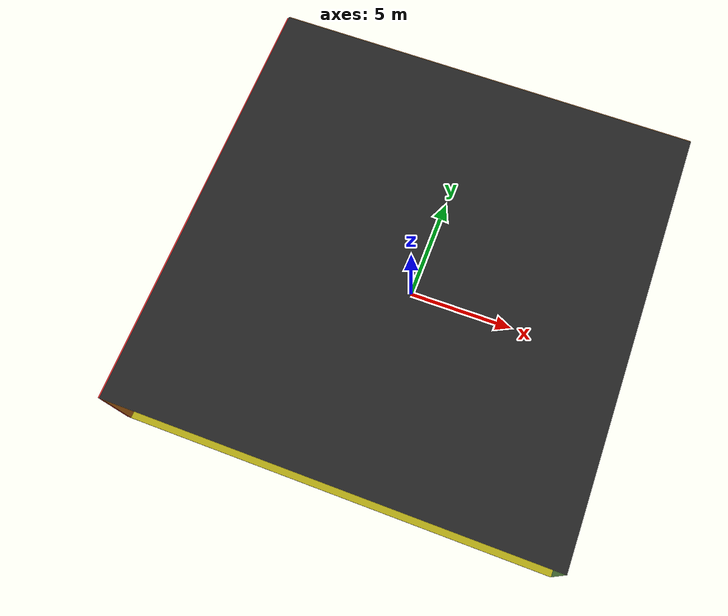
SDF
<sdf version="1.4">
 <world name="default">
  <physics type="ode">
   <max_step_size>0.001</max_step_size>
   <real_time_factor>1</real_time_factor>
   <real_time_update_rate>1000</real_time_update_rate>
   <gravity>0 0 -9.8</gravity>
  </physics>
  <scene><ambient>0.4 0.4 0.4 1</ambient><background>0.7 0.7 0.7 1</background><shadows>1</shadows></scene>
  <model name="Surrounding">
   <static>1</static>
   <link name="Ceiling">
    <collision name="Ceiling_Collision"><geometry><box><size>20 20 0.1</size></box></geometry></collision>
    <visual name="Ceiling_Visual">
     <geometry><box><size>20 20 0.1</size></box></geometry>
     <material>
      <script><uri>file://media/materials/scripts/gazebo.material</uri><name>Gazebo/FlatBlack</name></script>
     </material>
    </visual>
    <pose>0 0 4.05 0 0 0</pose>
   </link>
   <link name="Wall_South">
    <collision name="Wall_South_Collision">
     <geometry><box><size>20 0 4</size></box></geometry>
     <pose>0 0 2 0 -0 0</pose>
    </collision>
    <visual name="Wall_South_Visual">
     <pose>0 0 2 0 -0 0</pose>
     <geometry><box><size>20 0 4</size></box></geometry>
     <material>
      <script>
       <uri>file://media/materials/scripts/gazebo.material</uri>
       <name>Gazebo/YellowTransparent</name>
      </script>
     </material>
    </visual>
    <velocity_decay><linear>0</linear><angular>0</angular></velocity_decay>
    <pose>0 -10 0 0 -0 0</pose>
   </link>
   <link name="Wall_East">
    <collision name="Wall_21_Collision">
     <geometry><box><size>20 0 4</size></box></geometry>
     <pose>0 0 2 0 -0 0</pose>
    </collision>
    <visual name="Wall_21_Visual">
     <pose>0 0 2 0 -0 0</pose>
     <geometry><box><size>20 0 4</size></box></geometry>
     <material>
      <script><uri>file://media/materials/scripts/gazebo.material</uri><name>Gazebo/Turquoise</name></script>
     </material>
    </visual>
    <velocity_decay><linear>0</linear><angular>0</angular></velocity_decay>
    <pose>10 0 0 0 -0 1.5708</pose>
   </link>
   <link name="Wall_North">
    <collision name="Wall_22_Collision">
     <geometry><box><size>20 0.2 4</size></box></geometry>
     <pose>0 0 2 0 -0 0</pose>
    </collision>
    <visual name="Wall_22_Visual">
     <pose>0 0 2 0 -0 0</pose>
     <geometry><box><size>20 0.2 4</size></box></geometry>
     <material>
      <script><uri>file://media/materials/scripts/gazebo.material</uri><name>Gazebo/Wood</name></script>
     </material>
    </visual>
    <velocity_decay><linear>0</linear><angular>0</angular></velocity_decay>
    <pose>0 10 0 0 -0 0</pose>
   </link>
   <link name="Wall_West">
    <collision name="Wall_23_Collision">
     <geometry><box><size>20 0.2 4</size></box></geometry>
     <pose>0 0 2 0 -0 0</pose>
    </collision>
    <visual name="Wall_23_Visual">
     <pose>0 0 2 0 -0 0</pose>
     <geometry><box><size>20 0.2 4</size></box></geometry>
     <material>
      <script><uri>file://media/materials/scripts/gazebo.material</uri><name>Gazebo/Red</name></script>
     </material>
    </visual>
    <velocity_decay><linear>0</linear><angular>0</angular></velocity_decay>
    <pose>-10 0 0 0 0 -1.5708</pose>
   </link>
   <link name="Ground_link">
    <collision name="collision">
     <pose>0 0 .05 0 -0 0</pose>
     <geometry><box><size>20 20 0.1</size></box></geometry>
    </collision>
    <visual name="visual">
     <pose>0 0 .05 0 -0 0</pose>
     <geometry><box><size>20 20 0.1</size></box></geometry>
     <material>
      <script><uri>file://media/materials/scripts/gazebo.material</uri><name>Gazebo/YellowGlow</name></script>
     </material>
    </visual>
   </link>
   <static>1</static>
  </model>
  <spherical_coordinates>
   <surface_model>EARTH_WGS84</surface_model>
   <latitude_deg>0</latitude_deg>
   <longitude_deg>0</longitude_deg>
   <elevation>0</elevation>
   <heading_deg>0</heading_deg>
  </spherical_coordinates>
  <light name="lightball_0" type="diffuse">
   <diffuse>0.8 0.8 0.8 1</diffuse>
   <specular>0.2 0.2 0.2 1</specular>
   <attenuation>
    <range>100</range>
    <constant>0.7</constant>
    <linear>0.01</linear>
    <quadratic>0.001</quadratic>
   </attenuation>
   <direction>-0.5 0.1 -0.9</direction>
   <pose>-2.0416315797 8.2215918641 2.89016599409 0 0 0</pose>
  </light>
  <light name="lightball_1" type="diffuse">
   <diffuse>0.8 0.8 0.8 1</diffuse>
   <specular>0.2 0.2 0.2 1</specular>
   <attenuation>
    <range>100</range>
    <constant>0.7</constant>
    <linear>0.01</linear>
    <quadratic>0.001</quadratic>
   </attenuation>
   <direction>-0.5 0.1 -0.9</direction>
   <pose>-8.00935147346 -3.8324680832 2.12611209874 0 0 0</pose>
  </light>
  <light name="lightball_2" type="diffuse">
   <diffuse>0.8 0.8 0.8 1</diffuse>
   <specular>0.2 0.2 0.2 1</specular>
   <attenuation>
    <range>100</range>
    <constant>0.7</constant>
    <linear>0.01</linear>
    <quadratic>0.001</quadratic>
   </attenuation>
   <direction>-0.5 0.1 -0.9</direction>
   <pose>8.76481880742 2.7396203941 2.268462975 0 0 0</pose>
  </light>
  <light name="lightball_3" type="diffuse">
   <diffuse>0.8 0.8 0.8 1</diffuse>
   <specular>0.2 0.2 0.2 1</specular>
   <attenuation>
    <range>100</range>
    <constant>0.7</constant>
    <linear>0.01</linear>
    <quadratic>0.001</quadratic>
   </attenuation>
   <direction>-0.5 0.1 -0.9</direction>
   <pose>6.12175557222 -2.16804917579 3.82232608789 0 0 0</pose>
  </light>
  <light name="lightball_4" type="diffuse">
   <diffuse>0.8 0.8 0.8 1</diffuse>
   <specular>0.2 0.2 0.2 1</specular>
   <attenuation>
    <range>100</range>
    <constant>0.7</constant>
    <linear>0.01</linear>
    <quadratic>0.001</quadratic>
   </attenuation>
   <direction>-0.5 0.1 -0.9</direction>
   <pose>1.10540808927 -0.4581188069 1.60739336925 0 0 0</pose>
  </light>
  <light name="lightball_5" type="diffuse">
   <diffuse>0.8 0.8 0.8 1</diffuse>
   <specular>0.2 0.2 0.2 1</specular>
   <attenuation>
    <range>100</range>
    <constant>0.7</constant>
    <linear>0.01</linear>
    <quadratic>0.001</quadratic>
   </attenuation>
   <direction>-0.5 0.1 -0.9</direction>
   <pose>7.52472602749 -4.6663727618 2.19675151367 0 0 0</pose>
  </light>
  <light name="lightball_6" type="diffuse">
   <diffuse>0.8 0.8 0.8 1</diffuse>
   <specular>0.2 0.2 0.2 1</specular>
   <attenuation>
    <range>100</range>
    <constant>0.7</constant>
    <linear>0.01</linear>
    <quadratic>0.001</quadratic>
   </attenuation>
   <direction>-0.5 0.1 -0.9</direction>
   <pose>-5.67571870933 9.28951718499 0.868460847679 0 0 0</pose>
  </light>
  <light name="lightball_7" type="diffuse">
   <diffuse>0.8 0.8 0.8 1</diffuse>
   <specular>0.2 0.2 0.2 1</specular>
   <attenuation>
    <range>100</range>
    <constant>0.7</constant>
    <linear>0.01</linear>
    <quadratic>0.001</quadratic>
   </attenuation>
   <direction>-0.5 0.1 -0.9</direction>
   <pose>8.3741552509 4.77791884886 3.43694653974 0 0 0</pose>
  </light>
  <light name="lightball_8" type="diffuse">
   <diffuse>0.8 0.8 0.8 1</diffuse>
   <specular>0.2 0.2 0.2 1</specular>
   <attenuation>
    <range>100</range>
    <constant>0.7</constant>
    <linear>0.01</linear>
    <quadratic>0.001</quadratic>
   </attenuation>
   <direction>-0.5 0.1 -0.9</direction>
   <pose>-3.51448540348 -8.38781005694 2.10059719479 0 0 0</pose>
  </light>
  <light name="lightball_9" type="diffuse">
   <diffuse>0.8 0.8 0.8 1</diffuse>
   <specular>0.2 0.2 0.2 1</specular>
   <attenuation>
    <range>100</range>
    <constant>0.7</constant>
    <linear>0.01</linear>
    <quadratic>0.001</quadratic>
   </attenuation>
   <direction>-0.5 0.1 -0.9</direction>
   <pose>4.40982328533 0.537508688602 1.92497193575 0 0 0</pose>
  </light>
  <light name="lightball_10" type="diffuse">
   <diffuse>0.8 0.8 0.8 1</diffuse>
   <specular>0.2 0.2 0.2 1</specular>
   <attenuation>
    <range>100</range>
    <constant>0.7</constant>
    <linear>0.01</linear>
    <quadratic>0.001</quadratic>
   </attenuation>
   <direction>-0.5 0.1 -0.9</direction>
   <pose>-3.41168756642 2.35073675602 3.30743480951 0 0 0</pose>
  </light>
  <light name="lightball_11" type="diffuse">
   <diffuse>0.8 0.8 0.8 1</diffuse>
   <specular>0.2 0.2 0.2 1</specular>
   <attenuation>
    <range>100</range>
    <constant>0.7</constant>
    <linear>0.01</linear>
    <quadratic>0.001</quadratic>
   </attenuation>
   <direction>-0.5 0.1 -0.9</direction>
   <pose>-6.17139527532 6.96482366575 2.78613978952 0 0 0</pose>
  </light>
  <light name="lightball_12" type="diffuse">
   <diffuse>0.8 0.8 0.8 1</diffuse>
   <specular>0.2 0.2 0.2 1</specular>
   <attenuation>
    <range>100</range>
    <constant>0.7</constant>
    <linear>0.01</linear>
    <quadratic>0.001</quadratic>
   </attenuation>
   <direction>-0.5 0.1 -0.9</direction>
   <pose>-0.232468719032 8.13010243286 2.60708416835 0 0 0</pose>
  </light>
  <include>
   <uri>model://robocup_3Dsim_goal</uri>
   <pose>-7.02346280644 -4.91325525708 0 0 0 1.86680887106</pose>
  </include>
  <include><uri>model://table</uri><pose>-6.72428565532 1.45412248328 0 0 0 0.619978132783</pose></include>
  <include><uri>model://cabinet</uri><pose>-4.9008798614 2.05791844946 0 0 0 3.08802319879</pose></include>
  <include><uri>model://cabinet</uri><pose>-2.26320038893 7.43641100177 0 0 0 2.35105846585</pose></include>
  <include>
   <uri>model://construction_cone</uri>
   <pose>1.1667879158 4.89908047817 0 0 0 1.07669033905</pose>
  </include>
  <include><uri>model://cabinet</uri><pose>4.81995058395 -2.14963026505 0 0 0 0.467596762793</pose></include>
  <include><uri>model://cabinet</uri><pose>5.11951906746 4.19483719334 0 0 0 1.68416375722</pose></include>
 </world>
</sdf>

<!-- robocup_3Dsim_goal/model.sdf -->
<sdf version="1.5">
  <model name="robocup_3d_goal">
    <static>true</static>
    <link name="left_post">
      <pose>0 1.05 0.45 0 0 0</pose>
      <collision name="collision">
        <geometry>
          <cylinder>
            <radius>0.05</radius>
            <length>0.9</length>
          </cylinder>
        </geometry>
      </collision>
      <visual name="visual">
        <geometry>
          <cylinder>
            <radius>0.05</radius>
            <length>0.9</length>
          </cylinder>
        </geometry>
        <material>
          <script>
            <uri>file://media/materials/scripts/gazebo.material</uri>
            <name>Gazebo/ZincYellow</name>
          </script>
        </material>
      </visual>
    </link>
    <link name="left_support_horiz_lower">
      <pose>0.30 1.05 0.01 0 0 0</pose>
      <collision name="collision">
        <geometry>
          <box>
            <size>0.50 0.02 0.02</size>
          </box>
        </geometry>
      </collision>
      <visual name="visual">
        <geometry>
          <box>
            <size>0.50 0.02 0.02</size>
          </box>
        </geometry>
        <material>
          <script>
            <uri>file://media/materials/scripts/gazebo.material</uri>
            <name>Gazebo/White</name>
          </script>
        </material>
      </visual>
    </link>
    <link name="left_support_horiz_upper">
      <pose>0.30 1.05 0.79 0 0 0</pose>
      <collision name="collision">
        <geometry>
          <box>
            <size>0.50 0.02 0.02</size>
          </box>
        </geometry>
      </collision>
      <visual name="visual">
        <geometry>
          <box>
            <size>0.50 0.02 0.02</size>
          </box>
        </geometry>
        <material>
          <script>
            <uri>file://media/materials/scripts/gazebo.material</uri>
            <name>Gazebo/White</name>
          </script>
        </material>
      </visual>
    </link>
    <link name="left_support_vertical">
      <pose>0.56 1.05 0.4 0 1.5708 0</pose>
      <collision name="collision">
        <geometry>
          <box>
            <size>0.80 0.02 0.02</size>
          </box>
        </geometry>
      </collision>
      <visual name="visual">
        <geometry>
          <box>
            <size>0.80 0.02 0.02</size>
          </box>
        </geometry>
        <material>
          <script>
            <uri>file://media/materials/scripts/gazebo.material</uri>
            <name>Gazebo/White</name>
          </script>
        </material>
      </visual>
    </link>
    <link name="right_support_horiz_lower">
      <pose>0.30 -1.05 0.01 0 0 0</pose>
      <collision name="collision">
        <geometry>
          <box>
            <size>0.50 0.02 0.02</size>
          </box>
        </geometry>
      </collision>
      <visual name="visual">
        <geometry>
          <box>
            <size>0.50 0.02 0.02</size>
          </box>
        </geometry>
        <material>
          <script>
            <uri>file://media/materials/scripts/gazebo.material</uri>
            <name>Gazebo/White</name>
          </script>
        </material>
      </visual>
    </link>
    <link name="right_support_horiz_upper">
      <pose>0.30 -1.05 0.79 0 0 0</pose>
      <collision name="collision">
        <geometry>
          <box>
            <size>0.50 0.02 0.02</size>
          </box>
        </geometry>
      </collision>
      <visual name="visual">
        <geometry>
          <box>
            <size>0.50 0.02 0.02</size>
          </box>
        </geometry>
        <material>
          <script>
            <uri>file://media/materials/scripts/gazebo.material</uri>
            <name>Gazebo/White</name>
          </script>
        </material>
      </visual>
    </link>
    <link name="right_support_vertical">
      <pose>0.56 -1.05 0.4 0 1.5708 0</pose>
      <collision name="collision">
        <geometry>
          <box>
            <size>0.80 0.02 0.02</size>
          </box>
        </geometry>
      </collision>
      <visual name="visual">
        <geometry>
          <box>
            <size>0.80 0.02 0.02</size>
          </box>
        </geometry>
        <material>
          <script>
            <uri>file://media/materials/scripts/gazebo.material</uri>
            <name>Gazebo/White</name>
          </script>
        </material>
      </visual>
    </link>
    <link name="center_support_horiz_lower">
      <pose>0.56 0 0.01 0 1.5708 0</pose>
      <collision name="collision">
        <geometry>
          <box>
            <size>0.02 2.08 0.02</size>
          </box>
        </geometry>
      </collision>
      <visual name="visual">
        <geometry>
          <box>
            <size>0.02 2.08 0.02</size>
          </box>
        </geometry>
        <material>
          <script>
            <uri>file://media/materials/scripts/gazebo.material</uri>
            <name>Gazebo/White</name>
          </script>
        </material>
      </visual>
    </link>
    <link name="center_support_horiz_upper">
      <pose>0.56 0 0.79 0 1.5708 0</pose>
      <collision name="collision">
        <geometry>
          <box>
            <size>0.02 2.08 0.02</size>
          </box>
        </geometry>
      </collision>
      <visual name="visual">
        <geometry>
          <box>
            <size>0.02 2.08 0.02</size>
          </box>
        </geometry>
        <material>
          <script>
            <uri>file://media/materials/scripts/gazebo.material</uri>
            <name>Gazebo/White</name>
          </script>
        </material>
      </visual>
    </link>
    <link name="right_post">
      <pose>0 -1.05 0.45 0 0 0</pose>
      <collision name="collision">
        <geometry>
          <cylinder>
            <radius>0.05</radius>
            <length>0.9</length>
          </cylinder>
        </geometry>
      </collision>
      <visual name="visual">
        <geometry>
          <cylinder>
            <radius>0.05</radius>
            <length>0.9</length>
          </cylinder>
        </geometry>
        <material>
          <script>
            <uri>file://media/materials/scripts/gazebo.material</uri>
            <name>Gazebo/ZincYellow</name>
          </script>
        </material>
      </visual>
    </link>
    <link name="crossbar">
      <pose>0 0 0.85 1.57 1.57 0</pose>
      <collision name="collision">
        <geometry>
          <cylinder>
            <radius>0.05</radius>
            <length>2.0</length>
          </cylinder>
        </geometry>
      </collision>
      <visual name="visual">
        <geometry>
          <cylinder>
            <radius>0.05</radius>
            <length>2.0</length>
          </cylinder>
        </geometry>
        <material>
          <script>
            <uri>file://media/materials/scripts/gazebo.material</uri>
            <name>Gazebo/ZincYellow</name>
          </script>
        </material>
      </visual>
    </link>
    <link name="center_net">
      <pose>0.56 0 0.40 0 0 0</pose>
      <collision name="collision">
        <geometry>
          <box>
            <size>0.01 2.1 0.80</size>
          </box>
        </geometry>
      </collision>
      <visual name="visual">
        <geometry>
          <box>
            <size>0.01 2.1 0.80</size>
          </box>
        </geometry>
        <material>
          <script>
            <uri>model://../model_source/models/robocup09_spl_field/materials/scripts/</uri>
            <uri>model://../model_source/models/robocup09_spl_field/materials/textures/</uri>
            <name>RoboCup/Net</name>
          </script>
        </material>
      </visual>
    </link>
    <link name="left_net">
      <pose>0.30 1.05 0.40 0 0 0</pose>
      <collision name="collision">
        <geometry>
          <box>
            <size>0.50 0.01 0.76</size>
          </box>
        </geometry>
      </collision>
      <visual name="visual">
        <geometry>
          <box>
            <size>0.50 0.01 0.76</size>
          </box>
        </geometry>
        <material>
          <script>
            <uri>model://../model_source/models/robocup09_spl_field/materials/scripts/</uri>
            <uri>model://../model_source/models/robocup09_spl_field/materials/textures/</uri>
            <name>RoboCup/Net</name>
          </script>
        </material>
      </visual>
    </link>
    <link name="right_net">
      <pose>0.30 -1.05 0.40 0 0 0</pose>
      <collision name="collision">
        <geometry>
          <box>
            <size>0.50 0.01 0.76</size>
          </box>
        </geometry>
      </collision>
      <visual name="visual">
        <geometry>
          <box>
            <size>0.50 0.01 0.76</size>
          </box>
        </geometry>
        <material>
          <script>
            <uri>model://../model_source/models/robocup09_spl_field/materials/scripts/</uri>
            <uri>model://../model_source/models/robocup09_spl_field/materials/textures/</uri>
            <name>RoboCup/Net</name>
          </script>
        </material>
      </visual>
    </link>
  </model>
</sdf>

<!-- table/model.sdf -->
<sdf version="1.5">
  <model name="table">
    <static>true</static>
    <link name="link">
      <collision name="surface">
        <pose>0 0 1.0 0 0 0</pose>
        <geometry>
          <box>
            <size>1.5 0.8 0.03</size>
          </box>
        </geometry>
        <surface>
          <friction>
            <ode>
              <mu>0.6</mu>
              <mu2>0.6</mu2>
            </ode>
          </friction>
        </surface>
      </collision>
      <visual name="visual1">
        <pose>0 0 1.0 0 0 0</pose>
        <geometry>
          <box>
            <size>1.5 0.8 0.03</size>
          </box>
        </geometry>
        <material>
          <script>
            <uri>model://media/materials/scripts/gazebo.material</uri>
            <name>Gazebo/Wood</name>
          </script>
        </material>
      </visual>
      <collision name="front_left_leg">
        <pose>0.68 0.38 0.5 0 0 0</pose>
        <geometry>
          <cylinder>
            <radius>0.02</radius>
            <length>1.0</length>
          </cylinder>
        </geometry>
      </collision>
      <visual name="front_left_leg">
        <pose>0.68 0.38 0.5 0 0 0</pose>
        <geometry>
          <cylinder>
            <radius>0.02</radius>
            <length>1.0</length>
          </cylinder>
        </geometry>
        <material>
          <script>
            <uri>model://media/materials/scripts/gazebo.material</uri>
            <name>Gazebo/Grey</name>
          </script>
        </material>
      </visual>
      <collision name="front_right_leg">
        <pose>0.68 -0.38 0.5 0 0 0</pose>
        <geometry>
          <cylinder>
            <radius>0.02</radius>
            <length>1.0</length>
          </cylinder>
        </geometry>
      </collision>
      <visual name="front_right_leg">
        <pose>0.68 -0.38 0.5 0 0 0</pose>
        <geometry>
          <cylinder>
            <radius>0.02</radius>
            <length>1.0</length>
          </cylinder>
        </geometry>
        <material>
          <script>
            <uri>model://media/materials/scripts/gazebo.material</uri>
            <name>Gazebo/Grey</name>
          </script>
        </material>
      </visual>
      <collision name="back_right_leg">
        <pose>-0.68 -0.38 0.5 0 0 0</pose>
        <geometry>
          <cylinder>
            <radius>0.02</radius>
            <length>1.0</length>
          </cylinder>
        </geometry>
      </collision>
      <visual name="back_right_leg">
        <pose>-0.68 -0.38 0.5 0 0 0</pose>
        <geometry>
          <cylinder>
            <radius>0.02</radius>
            <length>1.0</length>
          </cylinder>
        </geometry>
        <material>
          <script>
            <uri>model://media/materials/scripts/gazebo.material</uri>
            <name>Gazebo/Grey</name>
          </script>
        </material>
      </visual>
      <collision name="back_left_leg">
        <pose>-0.68 0.38 0.5 0 0 0</pose>
        <geometry>
          <cylinder>
            <radius>0.02</radius>
            <length>1.0</length>
          </cylinder>
        </geometry>
      </collision>
      <visual name="back_left_leg">
        <pose>-0.68 0.38 0.5 0 0 0</pose>
        <geometry>
          <cylinder>
            <radius>0.02</radius>
            <length>1.0</length>
          </cylinder>
        </geometry>
        <material>
          <script>
            <uri>model://media/materials/scripts/gazebo.material</uri>
            <name>Gazebo/Grey</name>
          </script>
        </material>
      </visual>
    </link>
  </model>
</sdf>

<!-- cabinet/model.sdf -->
<sdf version="1.5">
  <model name="cabinet">
    <static>true</static>
    <link name="cabinet_bottom_plate">
      <inertial>
        <pose>0 0 -1 0 0 0</pose>
        <inertia>
          <ixx>2.050000</ixx>
          <ixy>0</ixy>
          <ixz>0</ixz>
          <iyy>2.050000</iyy>
          <iyz>0</iyz>
          <izz>2.050000</izz>
        </inertia>
        <mass>25.000000</mass>
      </inertial>
      <collision name="cabinet_bottom_plate_geom">
        <pose>0 0 0.010000 0 0 0</pose>
        <geometry>
          <box>
            <size>0.450000 0.450000 0.020000</size>
          </box>
        </geometry>
      </collision>
      <visual name="cabinet_bottom_plate_geom_visual">
        <pose>0 0 0.010000 0 0 0</pose>
        <geometry>
          <box>
            <size>0.450000 0.450000 0.020000</size>
          </box>
        </geometry>
        <material>
          <script>
            <uri>model://media/materials/scripts/gazebo.material</uri>
            <name>Gazebo/Wood</name>
          </script>
        </material>
      </visual>
      <collision name="cabinet_bottom_plate_geom_cabinet_back_plate">
        <pose>0.235000 0 0.510000 0 0 0</pose>
        <geometry>
          <box>
            <size>0.020000 0.450000 1.020000</size>
          </box>
        </geometry>
      </collision>
      <visual name="cabinet_bottom_plate_geom_cabinet_back_plate_visual">
        <pose>0.235000 0 0.510000 0 0 0</pose>
        <geometry>
          <box>
            <size>0.020000 0.450000 1.020000</size>
          </box>
        </geometry>
        <material>
          <script>
            <uri>model://media/materials/scripts/gazebo.material</uri>
            <name>Gazebo/Wood</name>
          </script>
        </material>
      </visual>
      <collision name="cabinet_bottom_plate_geom_cabinet_left_plate">
        <pose>0 0.235000 0.510000 0 0 0</pose>
        <geometry>
          <box>
            <size>0.450000 0.020000 1.020000</size>
          </box>
        </geometry>
      </collision>
      <visual name="cabinet_bottom_plate_geom_cabinet_left_plate_visual">
        <pose>0 0.235000 0.510000 0 0 0</pose>
        <geometry>
          <box>
            <size>0.450000 0.020000 1.020000</size>
          </box>
        </geometry>
        <material>
          <script>
            <uri>model://media/materials/scripts/gazebo.material</uri>
            <name>Gazebo/Wood</name>
          </script>
        </material>
      </visual>
      <collision name="cabinet_bottom_plate_geom_cabinet_middle_plate">
        <pose>0 0 0.510000 0 0 0</pose>
        <geometry>
          <box>
            <size>0.450000 0.450000 0.020000</size>
          </box>
        </geometry>
      </collision>
      <visual name="cabinet_bottom_plate_geom_cabinet_middle_plate_visual">
        <pose>0 0 0.510000 0 0 0</pose>
        <geometry>
          <box>
            <size>0.450000 0.450000 0.020000</size>
          </box>
        </geometry>
        <material>
          <script>
            <uri>model://media/materials/scripts/gazebo.material</uri>
            <name>Gazebo/Wood</name>
          </script>
        </material>
      </visual>
      <collision name="cabinet_bottom_plate_geom_cabinet_right_plate">
        <pose>0 -0.235000 0.510000 0 0 0</pose>
        <geometry>
          <box>
            <size>0.450000 0.020000 1.020000</size>
          </box>
        </geometry>
      </collision>
      <visual name="cabinet_bottom_plate_geom_cabinet_right_plate_visual">
        <pose>0 -0.235000 0.510000 0 0 0</pose>
        <geometry>
          <box>
            <size>0.450000 0.020000 1.020000</size>
          </box>
        </geometry>
        <material>
          <script>
            <uri>model://media/materials/scripts/gazebo.material</uri>
            <name>Gazebo/Wood</name>
          </script>
        </material>
      </visual>
      <collision name="cabinet_bottom_plate_geom_cabinet_top_plate">
        <pose>0 0 1.010000 0 0 0</pose>
        <geometry>
          <box>
            <size>0.450000 0.450000 0.020000</size>
          </box>
        </geometry>
      </collision>
      <visual name="cabinet_bottom_plate_geom_cabinet_top_plate_visual">
        <pose>0 0 1.010000 0 0 0</pose>
        <geometry>
          <box>
            <size>0.450000 0.450000 0.020000</size>
          </box>
        </geometry>
        <material>
          <script>
            <uri>model://media/materials/scripts/gazebo.material</uri>
            <name>Gazebo/Wood</name>
          </script>
        </material>
      </visual>
    </link>
  </model>
</sdf>

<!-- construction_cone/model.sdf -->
<sdf version="1.5">
  <model name="Construction Cone">
    <link name="link">
      <collision name="collision">
        <geometry>
          <mesh>
            <scale>10 10 10</scale>
            <uri>file://isr-testbed/construction_cone/meshes/construction_cone.dae</uri>
          </mesh>
        </geometry>
      </collision>
      <visual name="visual">
        <geometry>
          <mesh>
            <scale>10 10 10</scale>
            <uri>file://isr-testbed/construction_cone/meshes/construction_cone.dae</uri>
          </mesh>
        </geometry>
      </visual>
    </link>
  </model>
</sdf>
